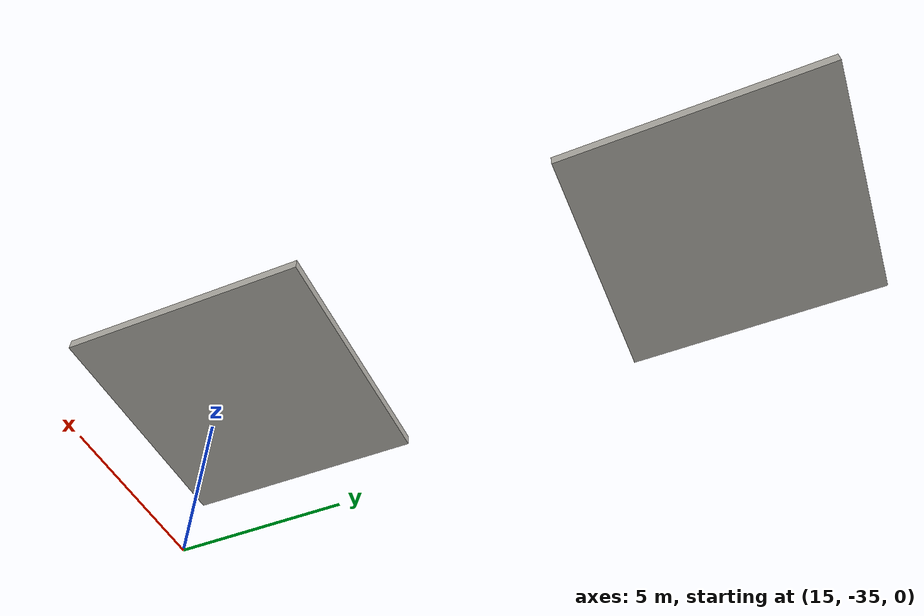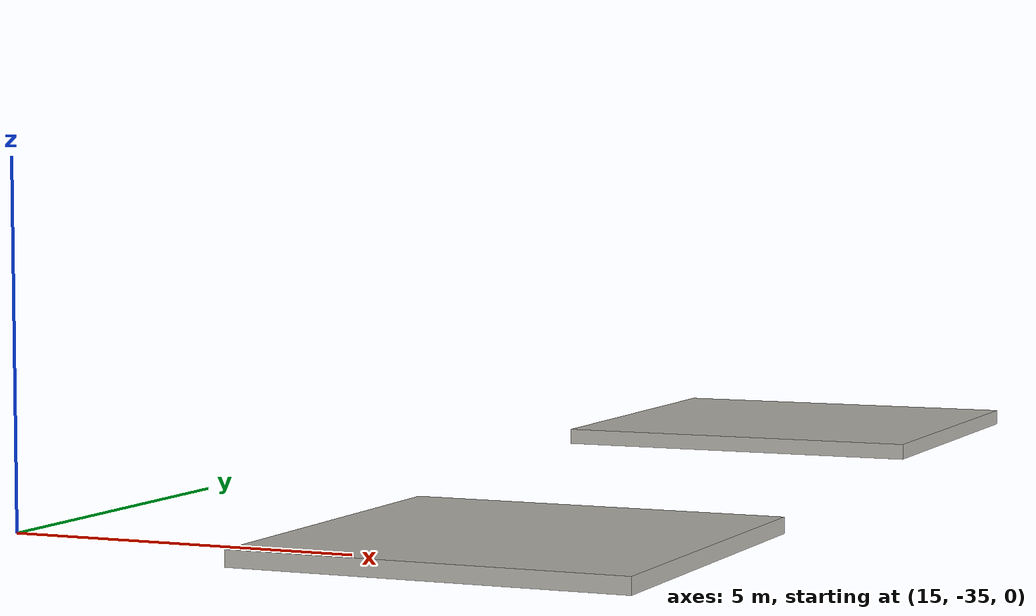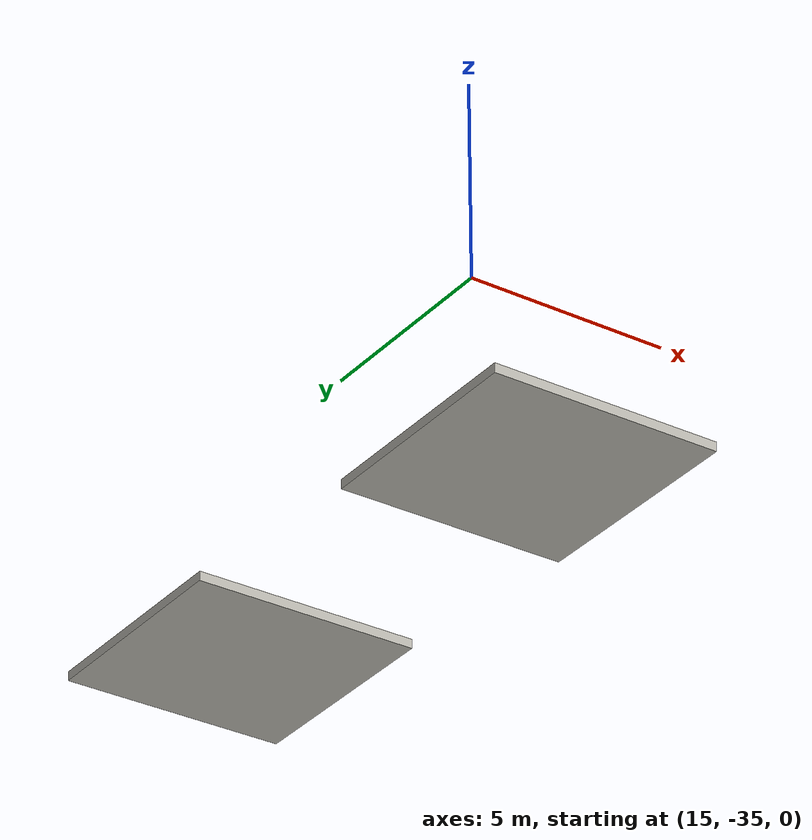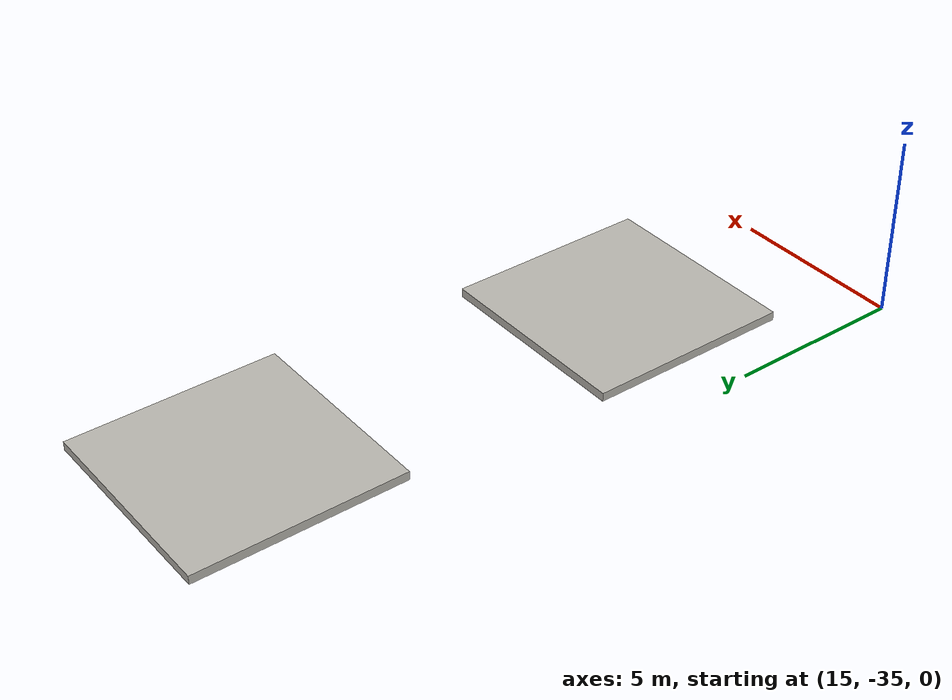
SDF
<?xml version="1.0" ?>
<sdf version="1.9">
  <model name="avian_final_base">
    <static>true</static>
    <pose>0 0 0 0 0 0</pose>
    <link name="link">
      <collision name="AVI_BASE_REPAIRER_collision">
        <pose>20.000000 -18.000000 -0.058000 0 0 0.000000</pose>
        <geometry>
          <box>
            <size>6.000000 6.000000 0.250000</size>
          </box>
        </geometry>
      </collision>
      <visual name="AVI_BASE_REPAIRER_visual">
        <pose>20.000000 -18.000000 -0.058000 0 0 0.000000</pose>
        <geometry>
          <box>
            <size>6.000000 6.000000 0.250000</size>
          </box>
        </geometry>
        <material>
          <ambient>0.288 0.284 0.272 1</ambient>
          <diffuse>0.720 0.710 0.680 1</diffuse>
          <specular>0.1 0.1 0.1 1</specular>
        </material>
      </visual>
      <collision name="AVI_BASE_SCANNER_collision">
        <pose>20.000000 -30.000000 -0.499000 0 0 0.000000</pose>
        <geometry>
          <box>
            <size>6.000000 6.000000 0.250000</size>
          </box>
        </geometry>
      </collision>
      <visual name="AVI_BASE_SCANNER_visual">
        <pose>20.000000 -30.000000 -0.499000 0 0 0.000000</pose>
        <geometry>
          <box>
            <size>6.000000 6.000000 0.250000</size>
          </box>
        </geometry>
        <material>
          <ambient>0.288 0.284 0.272 1</ambient>
          <diffuse>0.720 0.710 0.680 1</diffuse>
          <specular>0.1 0.1 0.1 1</specular>
        </material>
      </visual>
    </link>
  </model>
</sdf>
